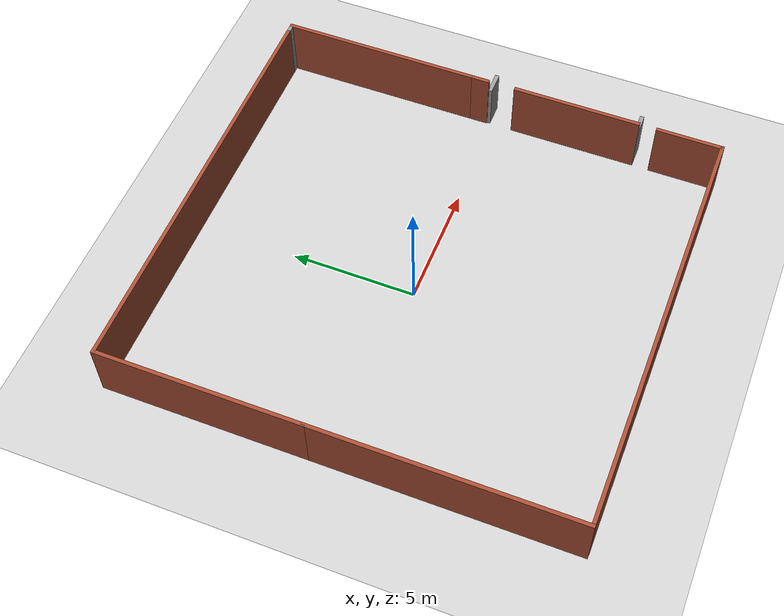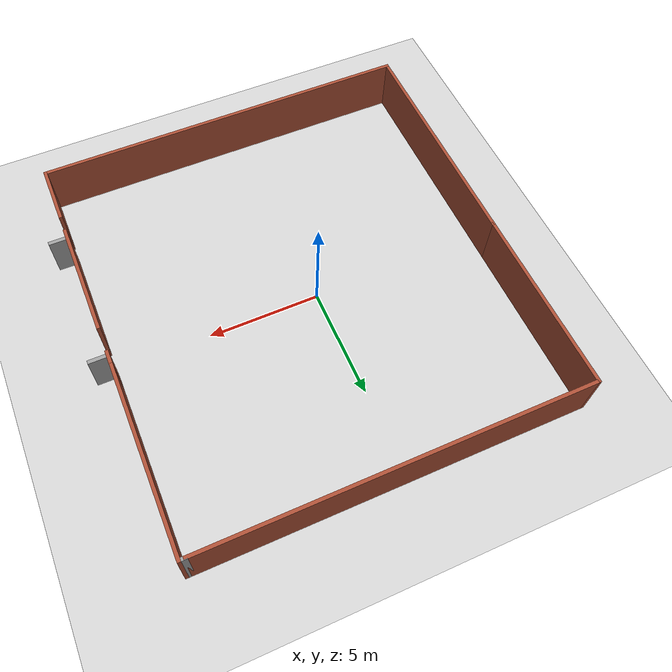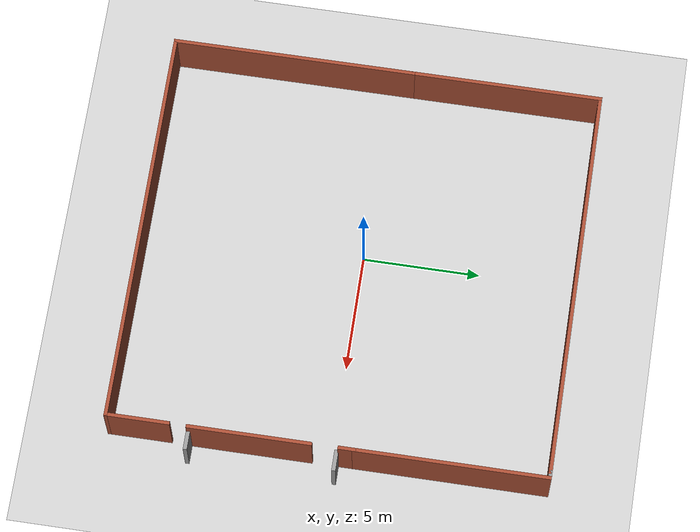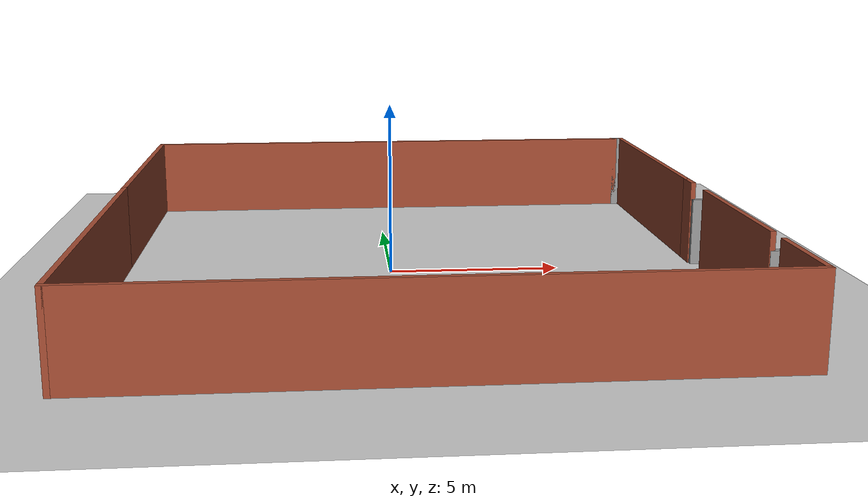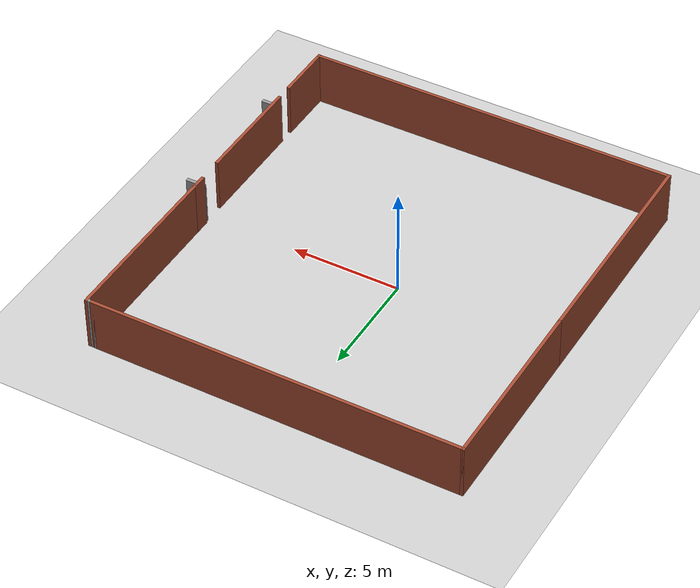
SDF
<sdf version="1.7">
 <world name="default">
  <light name="sun" type="directional">
   <pose>0 0 10 0 -0 0</pose>
   <diffuse>0.8 0.8 0.8 1</diffuse>
   <specular>0.2 0.2 0.2 1</specular>
   <attenuation>
    <range>1000</range>
    <constant>0.9</constant>
    <linear>0.01</linear>
    <quadratic>0.001</quadratic>
   </attenuation>
   <direction>-0.5 0.1 -0.9</direction>
   <spot><inner_angle>0</inner_angle><outer_angle>0</outer_angle><falloff>0</falloff></spot>
  </light>
  <model name="ground_plane">
   <static>1</static>
   <link name="link">
    <collision name="collision">
     <geometry><plane><normal>0 0 1</normal><size>100 100</size></plane></geometry>
     <surface>
      <contact><collide_bitmask>65535</collide_bitmask></contact>
      <friction><ode><mu>100</mu><mu2>50</mu2></ode></friction>
     </surface>
    </collision>
    <visual name="visual">
     <cast_shadows>0</cast_shadows>
     <geometry><plane><normal>0 0 1</normal><size>100 100</size></plane></geometry>
     <material>
      <script><uri>file://media/materials/scripts/gazebo.material</uri><name>Gazebo/Grey</name></script>
     </material>
    </visual>
   </link>
  </model>
  <gravity>0 0 -9.8</gravity>
  <magnetic_field>6e-06 2.3e-05 -4.2e-05</magnetic_field>
  <atmosphere type="adiabatic"/>
  <physics type="ode">
   <max_step_size>0.001</max_step_size>
   <real_time_factor>1</real_time_factor>
   <real_time_update_rate>1000</real_time_update_rate>
  </physics>
  <scene><ambient>0.4 0.4 0.4 1</ambient><background>0.7 0.7 0.7 1</background><shadows>1</shadows></scene>
  <spherical_coordinates>
   <surface_model>EARTH_WGS84</surface_model>
   <latitude_deg>0</latitude_deg>
   <longitude_deg>0</longitude_deg>
   <elevation>0</elevation>
   <heading_deg>0</heading_deg>
  </spherical_coordinates>
  <model name="warehouse_bricks">
   <pose>0.69279 -0.15068 0 0 -0 0</pose>
   <link name="Door_0">
    <collision name="Door_0_Collision">
     <geometry><box><size>0.9 0.17 2</size></box></geometry>
     <pose>0 0 1 0 -0 0</pose>
    </collision>
    <visual name="Door_0_Visual">
     <pose>0 0 1 0 -0 0</pose>
     <geometry><box><size>0.9 0.17 2</size></box></geometry>
     <material>
      <script><uri>file://media/materials/scripts/gazebo.material</uri><name>Gazebo/Grey</name></script>
     </material>
    </visual>
    <pose>8.96091 -5.7929 0 0 -0 0</pose>
   </link>
   <link name="Door_1">
    <collision name="Door_1_Collision">
     <geometry><box><size>0.9 0.17 2</size></box></geometry>
     <pose>0 0 1 0 -0 0</pose>
    </collision>
    <visual name="Door_1_Visual">
     <pose>0 0 1 0 -0 0</pose>
     <geometry><box><size>0.9 0.17 2</size></box></geometry>
     <material>
      <script><uri>file://media/materials/scripts/gazebo.material</uri><name>Gazebo/Grey</name></script>
     </material>
    </visual>
    <pose>8.96091 0.396799 0 0 -0 0</pose>
   </link>
   <link name="Wall_11">
    <collision name="Wall_11_Collision">
     <geometry><box><size>5.25 0.15 2.5</size></box></geometry>
     <pose>0 0 1.25 0 -0 0</pose>
    </collision>
    <visual name="Wall_11_Visual">
     <pose>0 0 1.25 0 -0 0</pose>
     <geometry><box><size>5.25 0.15 2.5</size></box></geometry>
     <material>
      <script><uri>file://media/materials/scripts/gazebo.material</uri><name>Gazebo/Bricks</name></script>
      <ambient>1 1 1 1</ambient>
     </material>
     <meta><layer>0</layer></meta>
    </visual>
    <pose>8.55635 -3.2429 0 0 -0 1.5708</pose>
   </link>
   <link name="Wall_15">
    <collision name="Wall_15_Collision">
     <geometry><box><size>0.75 0.15 2.5</size></box></geometry>
     <pose>0 0 1.25 0 -0 0</pose>
    </collision>
    <visual name="Wall_15_Visual">
     <pose>0 0 1.25 0 -0 0</pose>
     <geometry><box><size>0.75 0.15 2.5</size></box></geometry>
     <material>
      <script><uri>file://media/materials/scripts/gazebo.material</uri><name>Gazebo/Bricks</name></script>
      <ambient>1 1 1 1</ambient>
     </material>
     <meta><layer>0</layer></meta>
    </visual>
    <pose>8.54364 0.825 0 0 -0 -1.5708</pose>
   </link>
   <link name="Wall_17">
    <collision name="Wall_17_Collision">
     <geometry><box><size>8.25 0.15 2.5</size></box></geometry>
     <pose>0 0 1.25 0 -0 0</pose>
    </collision>
    <visual name="Wall_17_Visual">
     <pose>0 0 1.25 0 -0 0</pose>
     <geometry><box><size>8.25 0.15 2.5</size></box></geometry>
     <material>
      <script><uri>file://media/materials/scripts/gazebo.material</uri><name>Gazebo/Bricks</name></script>
      <ambient>1 1 1 1</ambient>
     </material>
     <meta><layer>0</layer></meta>
    </visual>
    <pose>-8.55635 5.175 0 0 -0 1.5708</pose>
   </link>
   <link name="Wall_18">
    <collision name="Wall_18_Collision">
     <geometry><box><size>17 0.15 2.5</size></box></geometry>
     <pose>0 0 1.25 0 -0 0</pose>
    </collision>
    <visual name="Wall_18_Visual">
     <pose>0 0 1.25 0 -0 0</pose>
     <geometry><box><size>17 0.15 2.5</size></box></geometry>
     <material>
      <script><uri>file://media/materials/scripts/gazebo.material</uri><name>Gazebo/Bricks</name></script>
      <ambient>1 1 1 1</ambient>
     </material>
     <meta><layer>0</layer></meta>
    </visual>
    <pose>-0.131355 9.225 0 0 -0 0</pose>
   </link>
   <link name="Wall_19">
    <collision name="Wall_19_Collision">
     <geometry><box><size>0.25 0.15 2.5</size></box></geometry>
     <pose>0 0 1.25 0 -0 0</pose>
    </collision>
    <visual name="Wall_19_Visual">
     <pose>0 0 1.25 0 -0 0</pose>
     <geometry><box><size>0.25 0.15 2.5</size></box></geometry>
     <material>
      <script><uri>file://media/materials/scripts/gazebo.material</uri><name>Gazebo/Grey</name></script>
      <ambient>1 1 1 1</ambient>
     </material>
     <meta><layer>0</layer></meta>
    </visual>
    <pose>8.34365 9.225 0 0 -0 0</pose>
   </link>
   <link name="Wall_21">
    <collision name="Wall_21_Collision">
     <geometry><box><size>8.25 0.15 2.5</size></box></geometry>
     <pose>0 0 1.25 0 -0 0</pose>
    </collision>
    <visual name="Wall_21_Visual">
     <pose>0 0 1.25 0 -0 0</pose>
     <geometry><box><size>8.25 0.15 2.5</size></box></geometry>
     <material>
      <script><uri>file://media/materials/scripts/gazebo.material</uri><name>Gazebo/Bricks</name></script>
      <ambient>1 1 1 1</ambient>
     </material>
     <meta><layer>0</layer></meta>
    </visual>
    <pose>8.54364 5.175 0 0 -0 1.5708</pose>
   </link>
   <link name="Wall_7">
    <collision name="Wall_7_Collision">
     <geometry><box><size>10.5 0.15 2.5</size></box></geometry>
     <pose>0 0 1.25 0 -0 0</pose>
    </collision>
    <visual name="Wall_7_Visual">
     <pose>0 0 1.25 0 -0 0</pose>
     <geometry><box><size>10.5 0.15 2.5</size></box></geometry>
     <material>
      <script><uri>file://media/materials/scripts/gazebo.material</uri><name>Gazebo/Bricks</name></script>
      <ambient>1 1 1 1</ambient>
     </material>
     <meta><layer>0</layer></meta>
    </visual>
    <pose>-8.55635 -4.05 0 0 -0 -1.5708</pose>
   </link>
   <link name="Wall_8">
    <collision name="Wall_8_Collision">
     <geometry><box><size>17.25 0.15 2.5</size></box></geometry>
     <pose>0 0 1.25 0 -0 0</pose>
    </collision>
    <visual name="Wall_8_Visual">
     <pose>0 0 1.25 0 -0 0</pose>
     <geometry><box><size>17.25 0.15 2.5</size></box></geometry>
     <material>
      <script><uri>file://media/materials/scripts/gazebo.material</uri><name>Gazebo/Bricks</name></script>
      <ambient>1 1 1 1</ambient>
     </material>
     <meta><layer>0</layer></meta>
    </visual>
    <pose>-0.006355 -9.225 0 0 -0 0</pose>
   </link>
   <link name="Wall_9">
    <collision name="Wall_9_Collision">
     <geometry><box><size>2.75 0.15 2.5</size></box></geometry>
     <pose>0 0 1.25 0 -0 0</pose>
    </collision>
    <visual name="Wall_9_Visual">
     <pose>0 0 1.25 0 -0 0</pose>
     <geometry><box><size>2.75 0.15 2.5</size></box></geometry>
     <material>
      <script><uri>file://media/materials/scripts/gazebo.material</uri><name>Gazebo/Bricks</name></script>
      <ambient>1 1 1 1</ambient>
     </material>
     <meta><layer>0</layer></meta>
    </visual>
    <pose>8.54364 -7.925 0 0 -0 1.5708</pose>
   </link>
   <static>1</static>
  </model>
 </world>
</sdf>
